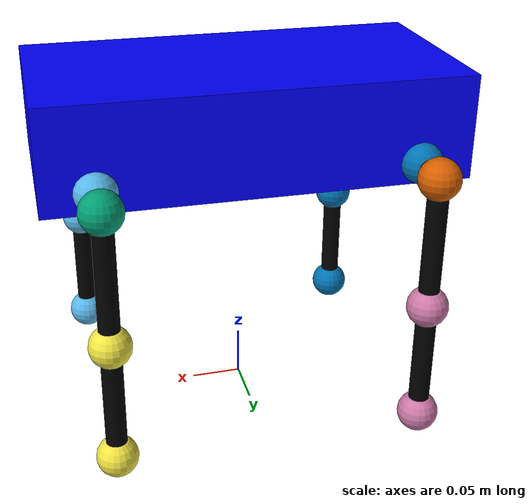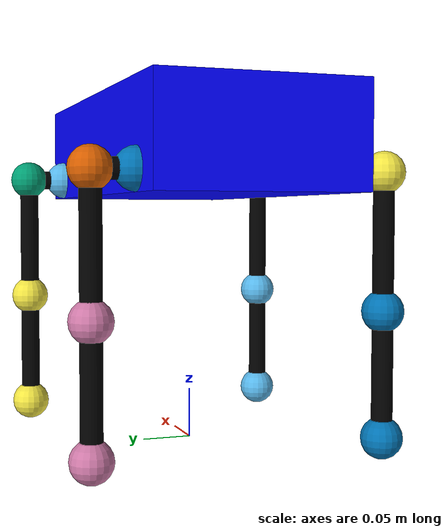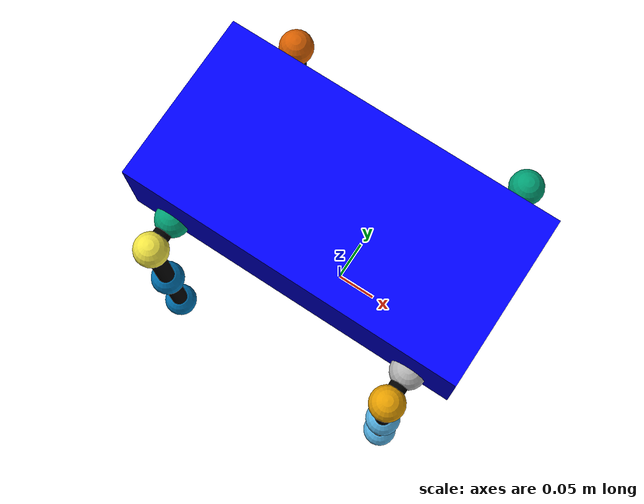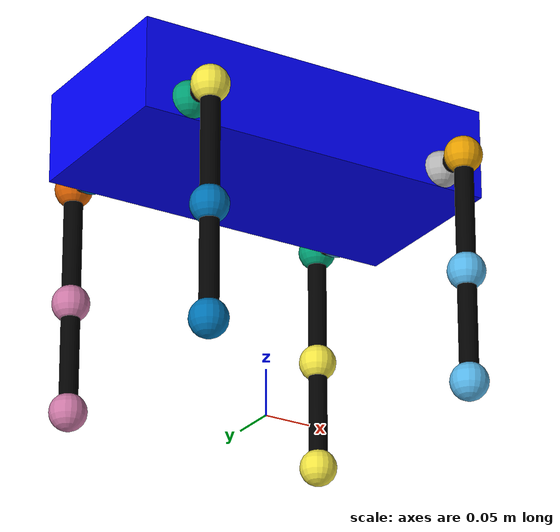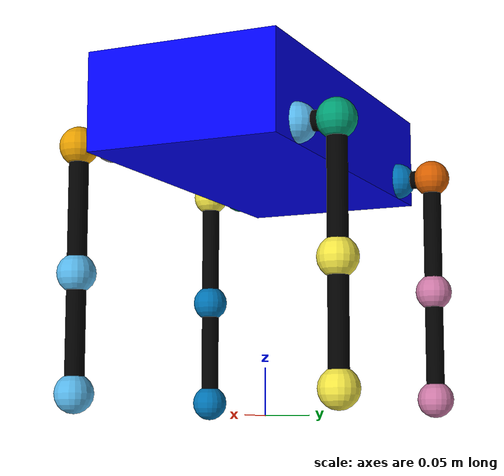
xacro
<!--
    使用 xacro 优化 URDF 版的小车底盘实现：

    实现思路:
    1.将一些常量、变量封装为 xacro:property
      比如:PI 值、小车底盘半径、离地间距、车轮半径、宽度 ....
    2.使用 宏 封装驱动轮以及支撑轮实现，调用相关宏生成驱动轮与支撑轮

-->
<!-- 根标签，必须声明 xmlns:xacro -->
<robot name="four_leg_robot" xmlns:xacro="http://www.ros.org/wiki/xacro">
    <!-- 封装变量、常量 -->
    <xacro:property name="PI" value="3.141"/>
    <!-- 宏:黑色设置 -->
    <material name="black">
        <color rgba="0.0 0.0 0.0 1.0" />
    </material>
    <!-- 底盘属性 -->
    <xacro:property name="base_length" value="0.4" /> <!-- base_footprint 半径  -->
    <xacro:property name="base_width" value="0.2" /> <!-- base_link 半径 -->
    <xacro:property name="base_height" value="0.1" /> <!-- base_link 长 -->
    <xacro:property name="earth_space" value="0.3" /> <!-- 离地间距 -->

    <!-- base link -->
    <link name="base_link">
      <visual>
        <geometry>
          <box size="${base_length} ${base_width} ${base_height}" />
        </geometry>
        <origin xyz="0 0 ${earth_space}" rpy="0 0 0" />
        <material name="blue">
          <color rgba="0.0 0.0 1.0 1.0" />
        </material>
      </visual>
    </link>

    <!-- leg -->
    <!-- 腿属性 -->
    <xacro:property name="length_leg1" value="0.04" />
    <xacro:property name="length_leg2" value="0.13" />
    <xacro:property name="length_leg3" value="0.12" />
    <xacro:property name="width_leg" value="0.01" />

    <!-- 左腿宏实现 -->
    <xacro:macro name="left_leg" params="name flag">
    <!-- 左腿1-->
      <link name="${name}_left_leg1">
        <visual>
          <geometry>
            <cylinder length="${length_leg1}" radius="${width_leg}" />
          </geometry>
          <origin xyz="0.0 ${length_leg1 / 2} 0.0" rpy="${PI / 2} 0.0 0.0" />
          <material name="black" />
        </visual>
        <visual>
          <geometry>
            <sphere radius="${width_leg + 0.01}" />
          </geometry>
          <origin xyz="0 0 0" rpy="0 0 0" />
        </visual>
      </link>

      <joint name="${name}_left_leg1_joint" type="revolute">
        <parent link="base_link" />
        <child link="${name}_left_leg1" />
        <origin xyz="${flag * (base_length / 2 - 0.05)} ${base_width / 2} ${earth_space - (base_height / 2) + width_leg + 0.01}" rpy="0 0 0" />
        <axis xyz="1 0 0" />
        <limit lower="${-1 * (PI / 6)}" upper="${PI / 6}" effort="15" velocity="3"/>
      </joint>

      <!-- 左腿2-->
      <link name="${name}_left_leg2">
        <visual>
          <geometry>
            <cylinder length="${length_leg2}" radius="${width_leg}" />
          </geometry>
          <origin xyz="0.0 0.0 ${-1 * length_leg2 / 2}" rpy="0.0 0.0 0.0" />
          <material name="black" />
        </visual>
        <visual>
          <geometry>
            <sphere radius="${width_leg + 0.01}" />
          </geometry>
          <origin xyz="0 0 0" rpy="0 0 0" />
        </visual>
      </link>

      <joint name="${name}_left_leg2_joint" type="revolute">
        <parent link="${name}_left_leg1" />
        <child link="${name}_left_leg2" />
        <origin xyz="0.0 ${length_leg1} 0.0" rpy="0 0 0" />
        <axis xyz="0 1 0" />
        <limit lower="0.0" upper="${PI / 2}" effort="15" velocity="3"/>
      </joint>

      <!-- 左腿3 -->
      <link name="${name}_left_leg3">
        <visual>
          <geometry>
            <cylinder length="${length_leg3}" radius="${width_leg}" />
          </geometry>
          <origin xyz="0.0 0.0 ${-1 * length_leg3 / 2}" rpy="0.0 0.0 0.0" />
          <material name="black" />
        </visual>
        <visual>
          <geometry>
            <sphere radius="${width_leg + 0.01}" />
          </geometry>
          <origin xyz="0 0 0" rpy="0 0 0" />
        </visual>
        <visual>
          <geometry>
            <sphere radius="${width_leg + 0.01}" />
          </geometry>
          <origin xyz="0 0 ${-1 * length_leg3}" rpy="0 0 0" />
        </visual>
      </link>

      <joint name="${name}_left_leg3_joint" type="revolute">
        <parent link="${name}_left_leg2" />
        <child link="${name}_left_leg3" />
        <origin xyz="0.0 0.0 ${-1 * length_leg2}" rpy="0 0 0" />
        <axis xyz="0 1 0" />
        <limit lower="${-1 * PI * 2 / 3}" upper="0.0" effort="15" velocity="3"/>
      </joint>

    </xacro:macro>

    <xacro:left_leg name="front" flag="1" />
    <xacro:left_leg name="rear" flag="-1" />

    <!-- 右腿宏实现 -->
    <xacro:macro name="right_leg" params="name flag">
    <!-- 右腿1-->
      <link name="${name}_right_leg1">
        <visual>
          <geometry>
            <cylinder length="${length_leg1}" radius="${width_leg}" />
          </geometry>
          <origin xyz="0.0 ${-1 * length_leg1 / 2} 0.0" rpy="${PI / 2} 0.0 0.0" />
          <material name="black" />
        </visual>
        <visual>
          <geometry>
            <sphere radius="${width_leg + 0.01}" />
          </geometry>
          <origin xyz="0 0 0" rpy="0 0 0" />
        </visual>
      </link>

      <joint name="${name}_right_leg1_joint" type="revolute">
        <parent link="base_link" />
        <child link="${name}_right_leg1" />
        <origin xyz="${flag * (base_length / 2 - 0.05)} ${-1 * base_width / 2} ${earth_space - (base_height / 2) + width_leg + 0.01}" rpy="0 0 0" />
        <axis xyz="1 0 0" />
        <limit lower="${-1 * (PI / 6)}" upper="${PI / 6}" effort="15" velocity="3"/>
      </joint>

      <!-- 左腿2-->
      <link name="${name}_right_leg2">
        <visual>
          <geometry>
            <cylinder length="${length_leg2}" radius="${width_leg}" />
          </geometry>
          <origin xyz="0.0 0.0 ${-1 * length_leg2 / 2}" rpy="0.0 0.0 0.0" />
          <material name="black" />
        </visual>
        <visual>
          <geometry>
            <sphere radius="${width_leg + 0.01}" />
          </geometry>
          <origin xyz="0 0 0" rpy="0 0 0" />
        </visual>
      </link>

      <joint name="${name}_right_leg2_joint" type="revolute">
        <parent link="${name}_right_leg1" />
        <child link="${name}_right_leg2" />
        <origin xyz="0.0 ${-1 * length_leg1} 0.0" rpy="0 0 0" />
        <axis xyz="0 1 0" />
        <limit lower="0.0" upper="${PI / 2}" effort="15" velocity="3"/>
      </joint>

      <!-- 左腿3 -->
      <link name="${name}_right_leg3">
        <visual>
          <geometry>
            <cylinder length="${length_leg3}" radius="${width_leg}" />
          </geometry>
          <origin xyz="0.0 0.0 ${-1 * length_leg3 / 2}" rpy="0.0 0.0 0.0" />
          <material name="black" />
        </visual>
        <visual>
          <geometry>
            <sphere radius="${width_leg + 0.01}" />
          </geometry>
          <origin xyz="0 0 0" rpy="0 0 0" />
        </visual>
        <visual>
          <geometry>
            <sphere radius="${width_leg + 0.01}" />
          </geometry>
          <origin xyz="0 0 ${-1 * length_leg3}" rpy="0 0 0" />
        </visual>
      </link>

      <joint name="${name}_right_leg3_joint" type="revolute">
        <parent link="${name}_right_leg2" />
        <child link="${name}_right_leg3" />
        <origin xyz="0.0 0.0 ${-1 * length_leg2}" rpy="0 0 0" />
        <axis xyz="0 1 0" />
        <limit lower="${-1 * PI * 2 / 3}" upper="0.0" effort="15" velocity="3"/>
      </joint>

    </xacro:macro>

    <xacro:right_leg name="front" flag="1" />
    <xacro:right_leg name="rear" flag="-1" />

</robot>
